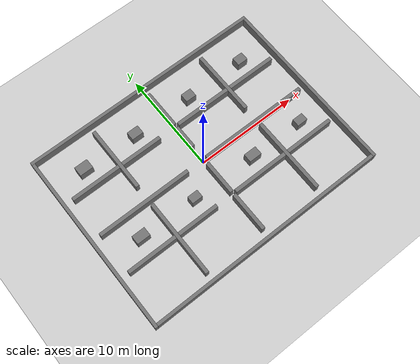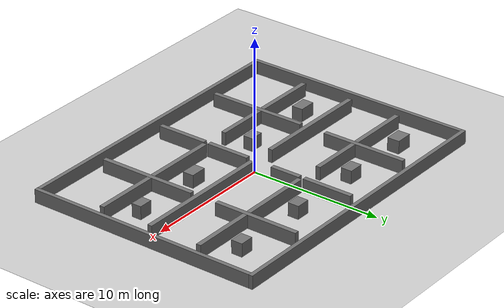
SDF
<sdf version='1.7'>
  <world name='office_rooms_01'>
    <include><uri>model://sun</uri></include>
    <include><uri>model://ground_plane</uri></include>
    <model name='benchmark_obstacles'>
      <static>true</static>
      <link name='obstacles_link'>
        <collision name='obs_0001_collision'>
          <pose>0.000 8.850 0.500 0 0 0</pose>
          <geometry><box><size>24.000 0.300 1.000</size></box></geometry>
          <surface><contact><collide_without_contact>false</collide_without_contact></contact></surface>
        </collision>
        <visual name='obs_0001_visual'>
          <pose>0.000 8.850 0.500 0 0 0</pose>
          <geometry><box><size>24.000 0.300 1.000</size></box></geometry>
          <material>
            <ambient>0.25 0.25 0.25 1</ambient>
            <diffuse>0.45 0.45 0.45 1</diffuse>
            <specular>0.05 0.05 0.05 1</specular>
          </material>
        </visual>
        <collision name='obs_0002_collision'>
          <pose>-11.850 -0.150 0.500 0 0 0</pose>
          <geometry><box><size>0.300 17.700 1.000</size></box></geometry>
          <surface><contact><collide_without_contact>false</collide_without_contact></contact></surface>
        </collision>
        <visual name='obs_0002_visual'>
          <pose>-11.850 -0.150 0.500 0 0 0</pose>
          <geometry><box><size>0.300 17.700 1.000</size></box></geometry>
          <material>
            <ambient>0.25 0.25 0.25 1</ambient>
            <diffuse>0.45 0.45 0.45 1</diffuse>
            <specular>0.05 0.05 0.05 1</specular>
          </material>
        </visual>
        <collision name='obs_0003_collision'>
          <pose>11.850 -0.150 0.500 0 0 0</pose>
          <geometry><box><size>0.300 17.700 1.000</size></box></geometry>
          <surface><contact><collide_without_contact>false</collide_without_contact></contact></surface>
        </collision>
        <visual name='obs_0003_visual'>
          <pose>11.850 -0.150 0.500 0 0 0</pose>
          <geometry><box><size>0.300 17.700 1.000</size></box></geometry>
          <material>
            <ambient>0.25 0.25 0.25 1</ambient>
            <diffuse>0.45 0.45 0.45 1</diffuse>
            <specular>0.05 0.05 0.05 1</specular>
          </material>
        </visual>
        <collision name='obs_0004_collision'>
          <pose>-5.975 4.750 0.500 0 0 0</pose>
          <geometry><box><size>0.350 6.500 1.000</size></box></geometry>
          <surface><contact><collide_without_contact>false</collide_without_contact></contact></surface>
        </collision>
        <visual name='obs_0004_visual'>
          <pose>-5.975 4.750 0.500 0 0 0</pose>
          <geometry><box><size>0.350 6.500 1.000</size></box></geometry>
          <material>
            <ambient>0.25 0.25 0.25 1</ambient>
            <diffuse>0.45 0.45 0.45 1</diffuse>
            <specular>0.05 0.05 0.05 1</specular>
          </material>
        </visual>
        <collision name='obs_0005_collision'>
          <pose>0.025 6.075 0.500 0 0 0</pose>
          <geometry><box><size>0.350 3.850 1.000</size></box></geometry>
          <surface><contact><collide_without_contact>false</collide_without_contact></contact></surface>
        </collision>
        <visual name='obs_0005_visual'>
          <pose>0.025 6.075 0.500 0 0 0</pose>
          <geometry><box><size>0.350 3.850 1.000</size></box></geometry>
          <material>
            <ambient>0.25 0.25 0.25 1</ambient>
            <diffuse>0.45 0.45 0.45 1</diffuse>
            <specular>0.05 0.05 0.05 1</specular>
          </material>
        </visual>
        <collision name='obs_0006_collision'>
          <pose>6.025 4.750 0.500 0 0 0</pose>
          <geometry><box><size>0.350 6.500 1.000</size></box></geometry>
          <surface><contact><collide_without_contact>false</collide_without_contact></contact></surface>
        </collision>
        <visual name='obs_0006_visual'>
          <pose>6.025 4.750 0.500 0 0 0</pose>
          <geometry><box><size>0.350 6.500 1.000</size></box></geometry>
          <material>
            <ambient>0.25 0.25 0.25 1</ambient>
            <diffuse>0.45 0.45 0.45 1</diffuse>
            <specular>0.05 0.05 0.05 1</specular>
          </material>
        </visual>
        <collision name='obs_0007_collision'>
          <pose>-8.600 5.775 0.500 0 0 0</pose>
          <geometry><box><size>1.300 0.950 1.000</size></box></geometry>
          <surface><contact><collide_without_contact>false</collide_without_contact></contact></surface>
        </collision>
        <visual name='obs_0007_visual'>
          <pose>-8.600 5.775 0.500 0 0 0</pose>
          <geometry><box><size>1.300 0.950 1.000</size></box></geometry>
          <material>
            <ambient>0.25 0.25 0.25 1</ambient>
            <diffuse>0.45 0.45 0.45 1</diffuse>
            <specular>0.05 0.05 0.05 1</specular>
          </material>
        </visual>
        <collision name='obs_0008_collision'>
          <pose>-3.175 5.675 0.500 0 0 0</pose>
          <geometry><box><size>1.150 0.850 1.000</size></box></geometry>
          <surface><contact><collide_without_contact>false</collide_without_contact></contact></surface>
        </collision>
        <visual name='obs_0008_visual'>
          <pose>-3.175 5.675 0.500 0 0 0</pose>
          <geometry><box><size>1.150 0.850 1.000</size></box></geometry>
          <material>
            <ambient>0.25 0.25 0.25 1</ambient>
            <diffuse>0.45 0.45 0.45 1</diffuse>
            <specular>0.05 0.05 0.05 1</specular>
          </material>
        </visual>
        <collision name='obs_0009_collision'>
          <pose>2.775 5.675 0.500 0 0 0</pose>
          <geometry><box><size>1.050 0.850 1.000</size></box></geometry>
          <surface><contact><collide_without_contact>false</collide_without_contact></contact></surface>
        </collision>
        <visual name='obs_0009_visual'>
          <pose>2.775 5.675 0.500 0 0 0</pose>
          <geometry><box><size>1.050 0.850 1.000</size></box></geometry>
          <material>
            <ambient>0.25 0.25 0.25 1</ambient>
            <diffuse>0.45 0.45 0.45 1</diffuse>
            <specular>0.05 0.05 0.05 1</specular>
          </material>
        </visual>
        <collision name='obs_0010_collision'>
          <pose>8.775 5.675 0.500 0 0 0</pose>
          <geometry><box><size>1.050 0.850 1.000</size></box></geometry>
          <surface><contact><collide_without_contact>false</collide_without_contact></contact></surface>
        </collision>
        <visual name='obs_0010_visual'>
          <pose>8.775 5.675 0.500 0 0 0</pose>
          <geometry><box><size>1.050 0.850 1.000</size></box></geometry>
          <material>
            <ambient>0.25 0.25 0.25 1</ambient>
            <diffuse>0.45 0.45 0.45 1</diffuse>
            <specular>0.05 0.05 0.05 1</specular>
          </material>
        </visual>
        <collision name='obs_0011_collision'>
          <pose>-8.575 3.975 0.500 0 0 0</pose>
          <geometry><box><size>4.850 0.350 1.000</size></box></geometry>
          <surface><contact><collide_without_contact>false</collide_without_contact></contact></surface>
        </collision>
        <visual name='obs_0011_visual'>
          <pose>-8.575 3.975 0.500 0 0 0</pose>
          <geometry><box><size>4.850 0.350 1.000</size></box></geometry>
          <material>
            <ambient>0.25 0.25 0.25 1</ambient>
            <diffuse>0.45 0.45 0.45 1</diffuse>
            <specular>0.05 0.05 0.05 1</specular>
          </material>
        </visual>
        <collision name='obs_0012_collision'>
          <pose>-3.775 3.975 0.500 0 0 0</pose>
          <geometry><box><size>4.050 0.350 1.000</size></box></geometry>
          <surface><contact><collide_without_contact>false</collide_without_contact></contact></surface>
        </collision>
        <visual name='obs_0012_visual'>
          <pose>-3.775 3.975 0.500 0 0 0</pose>
          <geometry><box><size>4.050 0.350 1.000</size></box></geometry>
          <material>
            <ambient>0.25 0.25 0.25 1</ambient>
            <diffuse>0.45 0.45 0.45 1</diffuse>
            <specular>0.05 0.05 0.05 1</specular>
          </material>
        </visual>
        <collision name='obs_0013_collision'>
          <pose>3.075 3.975 0.500 0 0 0</pose>
          <geometry><box><size>5.550 0.350 1.000</size></box></geometry>
          <surface><contact><collide_without_contact>false</collide_without_contact></contact></surface>
        </collision>
        <visual name='obs_0013_visual'>
          <pose>3.075 3.975 0.500 0 0 0</pose>
          <geometry><box><size>5.550 0.350 1.000</size></box></geometry>
          <material>
            <ambient>0.25 0.25 0.25 1</ambient>
            <diffuse>0.45 0.45 0.45 1</diffuse>
            <specular>0.05 0.05 0.05 1</specular>
          </material>
        </visual>
        <collision name='obs_0014_collision'>
          <pose>8.625 3.975 0.500 0 0 0</pose>
          <geometry><box><size>4.850 0.350 1.000</size></box></geometry>
          <surface><contact><collide_without_contact>false</collide_without_contact></contact></surface>
        </collision>
        <visual name='obs_0014_visual'>
          <pose>8.625 3.975 0.500 0 0 0</pose>
          <geometry><box><size>4.850 0.350 1.000</size></box></geometry>
          <material>
            <ambient>0.25 0.25 0.25 1</ambient>
            <diffuse>0.45 0.45 0.45 1</diffuse>
            <specular>0.05 0.05 0.05 1</specular>
          </material>
        </visual>
        <collision name='obs_0015_collision'>
          <pose>0.025 2.650 0.500 0 0 0</pose>
          <geometry><box><size>0.350 2.300 1.000</size></box></geometry>
          <surface><contact><collide_without_contact>false</collide_without_contact></contact></surface>
        </collision>
        <visual name='obs_0015_visual'>
          <pose>0.025 2.650 0.500 0 0 0</pose>
          <geometry><box><size>0.350 2.300 1.000</size></box></geometry>
          <material>
            <ambient>0.25 0.25 0.25 1</ambient>
            <diffuse>0.45 0.45 0.45 1</diffuse>
            <specular>0.05 0.05 0.05 1</specular>
          </material>
        </visual>
        <collision name='obs_0016_collision'>
          <pose>-6.375 -0.025 0.500 0 0 0</pose>
          <geometry><box><size>9.250 0.350 1.000</size></box></geometry>
          <surface><contact><collide_without_contact>false</collide_without_contact></contact></surface>
        </collision>
        <visual name='obs_0016_visual'>
          <pose>-6.375 -0.025 0.500 0 0 0</pose>
          <geometry><box><size>9.250 0.350 1.000</size></box></geometry>
          <material>
            <ambient>0.25 0.25 0.25 1</ambient>
            <diffuse>0.45 0.45 0.45 1</diffuse>
            <specular>0.05 0.05 0.05 1</specular>
          </material>
        </visual>
        <collision name='obs_0017_collision'>
          <pose>5.675 -0.025 0.500 0 0 0</pose>
          <geometry><box><size>10.750 0.350 1.000</size></box></geometry>
          <surface><contact><collide_without_contact>false</collide_without_contact></contact></surface>
        </collision>
        <visual name='obs_0017_visual'>
          <pose>5.675 -0.025 0.500 0 0 0</pose>
          <geometry><box><size>10.750 0.350 1.000</size></box></geometry>
          <material>
            <ambient>0.25 0.25 0.25 1</ambient>
            <diffuse>0.45 0.45 0.45 1</diffuse>
            <specular>0.05 0.05 0.05 1</specular>
          </material>
        </visual>
        <collision name='obs_0018_collision'>
          <pose>-5.975 -4.300 0.500 0 0 0</pose>
          <geometry><box><size>0.350 7.500 1.000</size></box></geometry>
          <surface><contact><collide_without_contact>false</collide_without_contact></contact></surface>
        </collision>
        <visual name='obs_0018_visual'>
          <pose>-5.975 -4.300 0.500 0 0 0</pose>
          <geometry><box><size>0.350 7.500 1.000</size></box></geometry>
          <material>
            <ambient>0.25 0.25 0.25 1</ambient>
            <diffuse>0.45 0.45 0.45 1</diffuse>
            <specular>0.05 0.05 0.05 1</specular>
          </material>
        </visual>
        <collision name='obs_0019_collision'>
          <pose>0.025 -2.200 0.500 0 0 0</pose>
          <geometry><box><size>0.350 3.300 1.000</size></box></geometry>
          <surface><contact><collide_without_contact>false</collide_without_contact></contact></surface>
        </collision>
        <visual name='obs_0019_visual'>
          <pose>0.025 -2.200 0.500 0 0 0</pose>
          <geometry><box><size>0.350 3.300 1.000</size></box></geometry>
          <material>
            <ambient>0.25 0.25 0.25 1</ambient>
            <diffuse>0.45 0.45 0.45 1</diffuse>
            <specular>0.05 0.05 0.05 1</specular>
          </material>
        </visual>
        <collision name='obs_0020_collision'>
          <pose>6.025 -4.300 0.500 0 0 0</pose>
          <geometry><box><size>0.350 7.500 1.000</size></box></geometry>
          <surface><contact><collide_without_contact>false</collide_without_contact></contact></surface>
        </collision>
        <visual name='obs_0020_visual'>
          <pose>6.025 -4.300 0.500 0 0 0</pose>
          <geometry><box><size>0.350 7.500 1.000</size></box></geometry>
          <material>
            <ambient>0.25 0.25 0.25 1</ambient>
            <diffuse>0.45 0.45 0.45 1</diffuse>
            <specular>0.05 0.05 0.05 1</specular>
          </material>
        </visual>
        <collision name='obs_0021_collision'>
          <pose>-8.350 -2.175 0.500 0 0 0</pose>
          <geometry><box><size>1.300 0.850 1.000</size></box></geometry>
          <surface><contact><collide_without_contact>false</collide_without_contact></contact></surface>
        </collision>
        <visual name='obs_0021_visual'>
          <pose>-8.350 -2.175 0.500 0 0 0</pose>
          <geometry><box><size>1.300 0.850 1.000</size></box></geometry>
          <material>
            <ambient>0.25 0.25 0.25 1</ambient>
            <diffuse>0.45 0.45 0.45 1</diffuse>
            <specular>0.05 0.05 0.05 1</specular>
          </material>
        </visual>
        <collision name='obs_0022_collision'>
          <pose>-2.725 -2.275 0.500 0 0 0</pose>
          <geometry><box><size>1.050 0.750 1.000</size></box></geometry>
          <surface><contact><collide_without_contact>false</collide_without_contact></contact></surface>
        </collision>
        <visual name='obs_0022_visual'>
          <pose>-2.725 -2.275 0.500 0 0 0</pose>
          <geometry><box><size>1.050 0.750 1.000</size></box></geometry>
          <material>
            <ambient>0.25 0.25 0.25 1</ambient>
            <diffuse>0.45 0.45 0.45 1</diffuse>
            <specular>0.05 0.05 0.05 1</specular>
          </material>
        </visual>
        <collision name='obs_0023_collision'>
          <pose>3.625 -2.325 0.500 0 0 0</pose>
          <geometry><box><size>1.250 0.850 1.000</size></box></geometry>
          <surface><contact><collide_without_contact>false</collide_without_contact></contact></surface>
        </collision>
        <visual name='obs_0023_visual'>
          <pose>3.625 -2.325 0.500 0 0 0</pose>
          <geometry><box><size>1.250 0.850 1.000</size></box></geometry>
          <material>
            <ambient>0.25 0.25 0.25 1</ambient>
            <diffuse>0.45 0.45 0.45 1</diffuse>
            <specular>0.05 0.05 0.05 1</specular>
          </material>
        </visual>
        <collision name='obs_0024_collision'>
          <pose>9.025 -2.375 0.500 0 0 0</pose>
          <geometry><box><size>1.050 0.750 1.000</size></box></geometry>
          <surface><contact><collide_without_contact>false</collide_without_contact></contact></surface>
        </collision>
        <visual name='obs_0024_visual'>
          <pose>9.025 -2.375 0.500 0 0 0</pose>
          <geometry><box><size>1.050 0.750 1.000</size></box></geometry>
          <material>
            <ambient>0.25 0.25 0.25 1</ambient>
            <diffuse>0.45 0.45 0.45 1</diffuse>
            <specular>0.05 0.05 0.05 1</specular>
          </material>
        </visual>
        <collision name='obs_0025_collision'>
          <pose>-8.575 -4.025 0.500 0 0 0</pose>
          <geometry><box><size>4.850 0.350 1.000</size></box></geometry>
          <surface><contact><collide_without_contact>false</collide_without_contact></contact></surface>
        </collision>
        <visual name='obs_0025_visual'>
          <pose>-8.575 -4.025 0.500 0 0 0</pose>
          <geometry><box><size>4.850 0.350 1.000</size></box></geometry>
          <material>
            <ambient>0.25 0.25 0.25 1</ambient>
            <diffuse>0.45 0.45 0.45 1</diffuse>
            <specular>0.05 0.05 0.05 1</specular>
          </material>
        </visual>
        <collision name='obs_0026_collision'>
          <pose>-3.775 -4.025 0.500 0 0 0</pose>
          <geometry><box><size>4.050 0.350 1.000</size></box></geometry>
          <surface><contact><collide_without_contact>false</collide_without_contact></contact></surface>
        </collision>
        <visual name='obs_0026_visual'>
          <pose>-3.775 -4.025 0.500 0 0 0</pose>
          <geometry><box><size>4.050 0.350 1.000</size></box></geometry>
          <material>
            <ambient>0.25 0.25 0.25 1</ambient>
            <diffuse>0.45 0.45 0.45 1</diffuse>
            <specular>0.05 0.05 0.05 1</specular>
          </material>
        </visual>
        <collision name='obs_0027_collision'>
          <pose>3.075 -4.025 0.500 0 0 0</pose>
          <geometry><box><size>5.550 0.350 1.000</size></box></geometry>
          <surface><contact><collide_without_contact>false</collide_without_contact></contact></surface>
        </collision>
        <visual name='obs_0027_visual'>
          <pose>3.075 -4.025 0.500 0 0 0</pose>
          <geometry><box><size>5.550 0.350 1.000</size></box></geometry>
          <material>
            <ambient>0.25 0.25 0.25 1</ambient>
            <diffuse>0.45 0.45 0.45 1</diffuse>
            <specular>0.05 0.05 0.05 1</specular>
          </material>
        </visual>
        <collision name='obs_0028_collision'>
          <pose>8.625 -4.025 0.500 0 0 0</pose>
          <geometry><box><size>4.850 0.350 1.000</size></box></geometry>
          <surface><contact><collide_without_contact>false</collide_without_contact></contact></surface>
        </collision>
        <visual name='obs_0028_visual'>
          <pose>8.625 -4.025 0.500 0 0 0</pose>
          <geometry><box><size>4.850 0.350 1.000</size></box></geometry>
          <material>
            <ambient>0.25 0.25 0.25 1</ambient>
            <diffuse>0.45 0.45 0.45 1</diffuse>
            <specular>0.05 0.05 0.05 1</specular>
          </material>
        </visual>
        <collision name='obs_0029_collision'>
          <pose>0.025 -6.125 0.500 0 0 0</pose>
          <geometry><box><size>0.350 3.850 1.000</size></box></geometry>
          <surface><contact><collide_without_contact>false</collide_without_contact></contact></surface>
        </collision>
        <visual name='obs_0029_visual'>
          <pose>0.025 -6.125 0.500 0 0 0</pose>
          <geometry><box><size>0.350 3.850 1.000</size></box></geometry>
          <material>
            <ambient>0.25 0.25 0.25 1</ambient>
            <diffuse>0.45 0.45 0.45 1</diffuse>
            <specular>0.05 0.05 0.05 1</specular>
          </material>
        </visual>
        <collision name='obs_0030_collision'>
          <pose>0.000 -8.850 0.500 0 0 0</pose>
          <geometry><box><size>23.400 0.300 1.000</size></box></geometry>
          <surface><contact><collide_without_contact>false</collide_without_contact></contact></surface>
        </collision>
        <visual name='obs_0030_visual'>
          <pose>0.000 -8.850 0.500 0 0 0</pose>
          <geometry><box><size>23.400 0.300 1.000</size></box></geometry>
          <material>
            <ambient>0.25 0.25 0.25 1</ambient>
            <diffuse>0.45 0.45 0.45 1</diffuse>
            <specular>0.05 0.05 0.05 1</specular>
          </material>
        </visual>
      </link>
    </model>
  </world>
</sdf>
